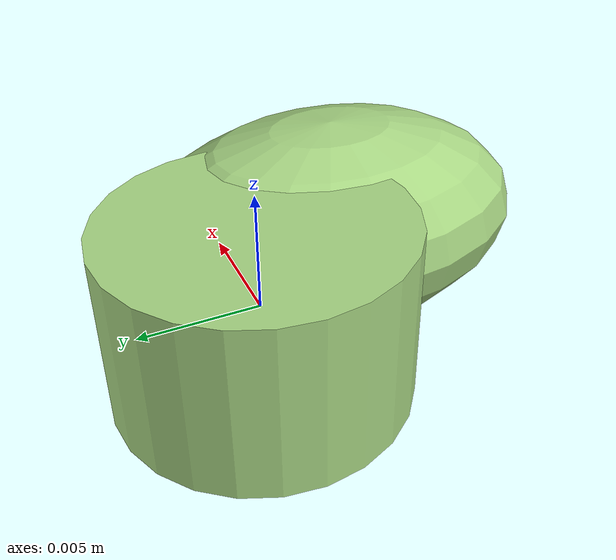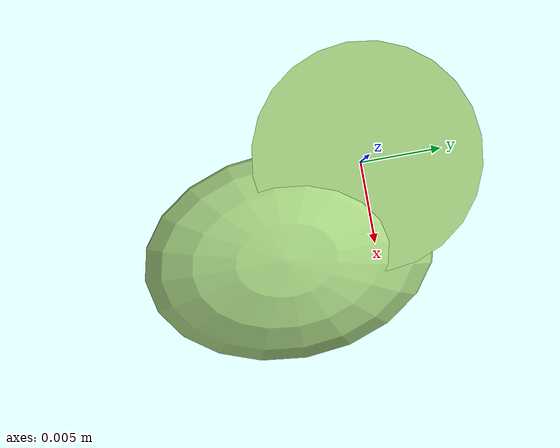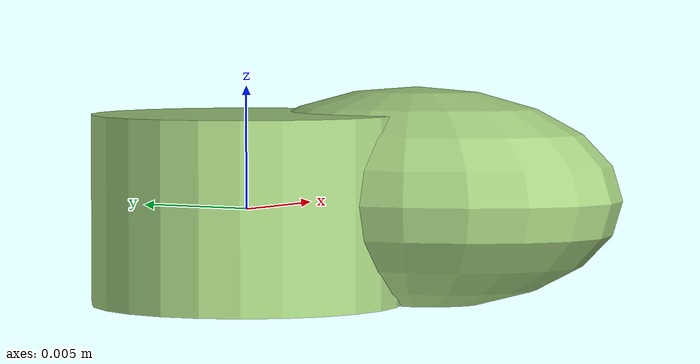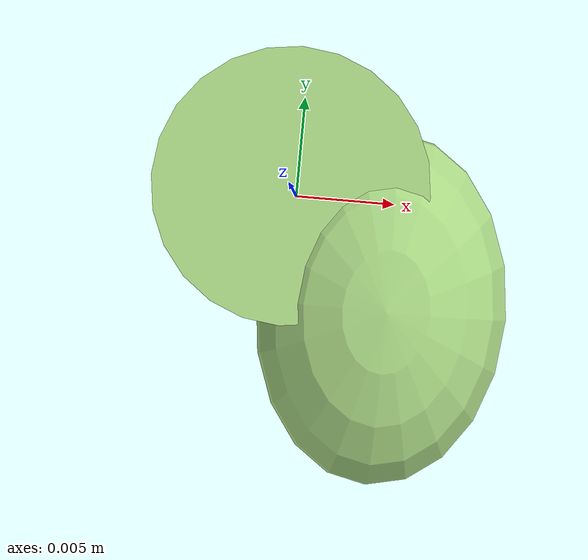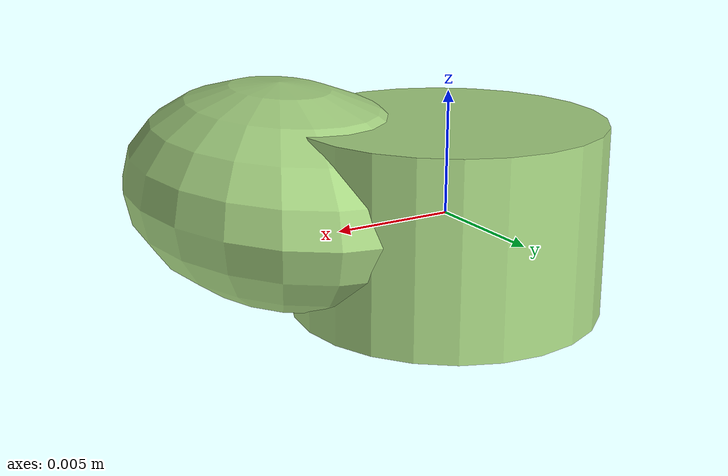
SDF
<?xml version="1.0" ?>
<!-- |    This document was autogenerated by xmacro from data/veggie_template/veggie_base.sdf.xacro  | -->
<!-- |    EDITING THIS FILE BY HAND IS NOT RECOMMENDED                                               | -->
<sdf version="1.8">
	<!-- Parameters -->
	<!-- Base -->
	<!-- Joint 0 -->
	<!-- Link 1 -->
	<!-- Joint 1 -->
	<!-- Link 2 -->
	<!-- Primitives -->
	<!-- All dimensions are half -->
	<!-- Object -->
	<model name="veggie">
		<!-- link0 -->
		<link name="link0">
			<inertial>
				<mass>0.0009709091753963016</mass>
				<inertia>
					<ixx>1.4538911571811222e-08</ixx>
					<ixy>0</ixy>
					<ixz>0</ixz>
					<iyy>1.4538911571811222e-08</iyy>
					<iyz>0</iyz>
					<izz>1.940856062619832e-08</izz>
				</inertia>
			</inertial>
			<visual name="link0_visual">
				<pose>0 0 0 0 0 0</pose>
				<geometry>
					<cylinder>
						<radius>0.006322988026730791</radius>
						<length>0.0077300623729694646</length>
					</cylinder>
				</geometry>
				<material>
					<ambient>0.659 0.839 0.514 1</ambient>
					<diffuse>0.659 0.839 0.514 1</diffuse>
					<specular>0 0 0 0</specular>
					<emissive>0 0 0 1</emissive>
				</material>
			</visual>
			<collision name="link0_collision">
				<pose>0 0 0 0 0 0 </pose>
				<geometry>
					<cylinder>
						<radius>0.006322988026730791</radius>
						<length>0.0077300623729694646</length>
					</cylinder>
				</geometry>
				<drake:proximity_properties>
					<drake:compliant_hydroelastic/>
					<drake:mesh_resolution_hint>0.002</drake:mesh_resolution_hint>
					<drake:hydroelastic_modulus>1e6</drake:hydroelastic_modulus>
					<drake:relaxation_time>0.1</drake:relaxation_time>
					<drake:mu_static>0.3</drake:mu_static>
					<drake:mu_dynamic>0.3</drake:mu_dynamic>
				</drake:proximity_properties>
			</collision>
		</link>
		<!-- link1 -->
		<joint name="joint0" type="fixed">
			<pose relative_to="link0">0.004745641126710664 -0.0052627961926989255 0.0003881673143722318 0.0 0.0 0.0</pose>
			<parent>link0</parent>
			<child>link1</child>
		</joint>
		<link name="link1">
			<pose relative_to="joint0">0 0 0 0 0 0</pose>
			<inertial>
				<mass>0.0010587517572198165</mass>
				<inertia>
					<ixx>2.106514673203594e-08</ixx>
					<ixy>0</ixy>
					<ixz>0</ixz>
					<iyy>1.2683337822403836e-08</iyy>
					<iyz>0</iyz>
					<izz>2.5005228794647253e-08</izz>
				</inertia>
			</inertial>
			<visual name="link1_visual">
				<pose>0 0 0 0 0 0</pose>
				<geometry>
					<ellipsoid>
						<radii>0.006265173749648418 0.008878955432185453 0.004543698686458311</radii>
					</ellipsoid>
				</geometry>
				<material>
					<ambient>0.659 0.839 0.514 1</ambient>
					<diffuse>0.659 0.839 0.514 1</diffuse>
					<specular>0 0 0 0</specular>
					<emissive>0 0 0 1</emissive>
				</material>
			</visual>
			<collision name="link1_collision">
				<pose>0 0 0 0 0 0 </pose>
				<geometry>
					<ellipsoid>
						<radii>0.006265173749648418 0.008878955432185453 0.004543698686458311</radii>
					</ellipsoid>
				</geometry>
				<drake:proximity_properties>
					<drake:compliant_hydroelastic/>
					<drake:mesh_resolution_hint>0.002</drake:mesh_resolution_hint>
					<drake:hydroelastic_modulus>1e6</drake:hydroelastic_modulus>
					<drake:hunt_crossley_dissipation>1</drake:hunt_crossley_dissipation>
					<drake:mu_static>0.3</drake:mu_static>
					<drake:mu_dynamic>0.3</drake:mu_dynamic>
				</drake:proximity_properties>
			</collision>
		</link>
		<!-- link2 -->
	</model>
</sdf>
